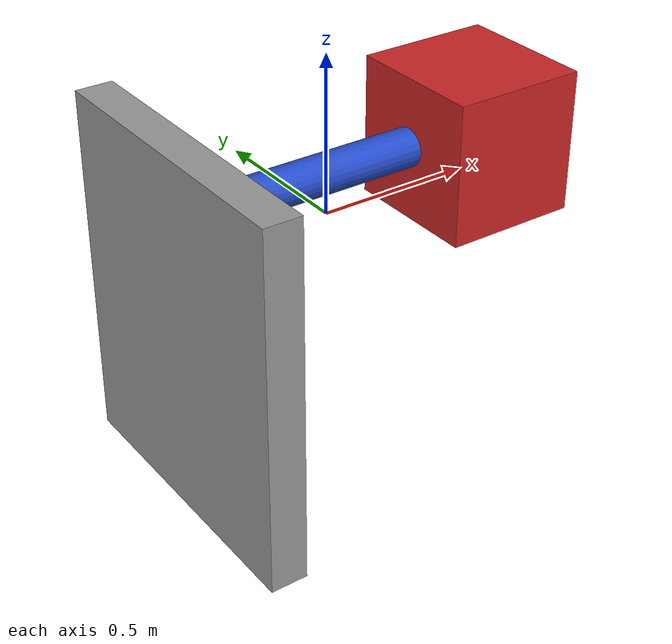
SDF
<?xml version='1.0'?>
<sdf version='1.7'>
  <model name='spring_mass_simple'>
    <link name='link_0'>
      <inertial>
        <mass>143649</mass>
        <inertia>
          <ixx>28886.2</ixx>
          <ixy>0</ixy>
          <ixz>0</ixz>
          <iyy>17090.2</iyy>
          <iyz>0</iyz>
          <izz>12145.6</izz>
        </inertia>
        <pose>0 0 0 0 -0 0</pose>
      </inertial>
      <pose>-0.446088 0.046589 -0.275992 0 -0 0</pose>
      <gravity>1</gravity>
      <self_collide>0</self_collide>
      <kinematic>0</kinematic>
      <enable_wind>0</enable_wind>
      <visual name='visual'>
        <pose>0 0 0 0 -0 0</pose>
        <geometry>
          <box>
            <size>0.120841 1 1.18872</size>
          </box>
        </geometry>
        <material>
          <lighting>1</lighting>
          <script>
            <uri>file://media/materials/scripts/gazebo.material</uri>
            <name>Gazebo/Grey</name>
          </script>
          <shader type='pixel'>
            <normal_map>__default__</normal_map>
          </shader>
          <ambient>0.3 0.3 0.3 1</ambient>
          <diffuse>0.7 0.7 0.7 1</diffuse>
          <specular>0.01 0.01 0.01 1</specular>
          <emissive>0 0 0 1</emissive>
        </material>
        <transparency>0</transparency>
        <cast_shadows>1</cast_shadows>
      </visual>
      <collision name='collision'>
        <laser_retro>0</laser_retro>
        <max_contacts>10</max_contacts>
        <pose>0 0 0 0 -0 0</pose>
        <geometry>
          <box>
            <size>0.120841 1 1.18872</size>
          </box>
        </geometry>
        <surface>
          <friction>
            <ode>
              <mu>1</mu>
              <mu2>1</mu2>
              <fdir1>0 0 0</fdir1>
              <slip1>0</slip1>
              <slip2>0</slip2>
            </ode>
            <torsional>
              <coefficient>1</coefficient>
              <patch_radius>0</patch_radius>
              <surface_radius>0</surface_radius>
              <use_patch_radius>1</use_patch_radius>
              <ode>
                <slip>0</slip>
              </ode>
            </torsional>
          </friction>
          <bounce>
            <restitution_coefficient>0</restitution_coefficient>
            <threshold>1e+06</threshold>
          </bounce>
          <contact>
            <collide_without_contact>0</collide_without_contact>
            <collide_without_contact_bitmask>1</collide_without_contact_bitmask>
            <collide_bitmask>1</collide_bitmask>
            <ode>
              <soft_cfm>0</soft_cfm>
              <soft_erp>0.2</soft_erp>
              <kp>1e+13</kp>
              <kd>1</kd>
              <max_vel>0.01</max_vel>
              <min_depth>0</min_depth>
            </ode>
            <bullet>
              <split_impulse>1</split_impulse>
              <split_impulse_penetration_threshold>-0.01</split_impulse_penetration_threshold>
              <soft_cfm>0</soft_cfm>
              <soft_erp>0.2</soft_erp>
              <kp>1e+13</kp>
              <kd>1</kd>
            </bullet>
          </contact>
        </surface>
      </collision>
    </link>
    <link name='link_1'>
      <inertial>
        <mass>0.0103185</mass>
        <inertia>
          <ixx>0.00041549</ixx>
          <ixy>0</ixy>
          <ixz>0</ixz>
          <iyy>0.00041549</iyy>
          <iyz>0</iyz>
          <izz>1.935e-05</izz>
        </inertia>
        <pose>0 0 0 0 -0 0</pose>
      </inertial>
      <pose>-0.0522 -0.016443 0.141985 -3.14159 1.5704 -3.14159</pose>
      <gravity>1</gravity>
      <self_collide>0</self_collide>
      <kinematic>0</kinematic>
      <enable_wind>0</enable_wind>
      <visual name='visual'>
        <pose>0 0 0 0 -0 0</pose>
        <geometry>
          <cylinder>
            <radius>0.0612437</radius>
            <length>0.686988</length>
          </cylinder>
        </geometry>
        <material>
          <lighting>1</lighting>
          <script>
            <uri>file://media/materials/scripts/gazebo.material</uri>
            <name>Gazebo/Blue</name>
          </script>
          <shader type='pixel'>
            <normal_map>__default__</normal_map>
          </shader>
          <ambient>0.3 0.3 0.3 1</ambient>
          <diffuse>0.7 0.7 0.7 1</diffuse>
          <specular>0.01 0.01 0.01 1</specular>
          <emissive>0 0 0 1</emissive>
        </material>
        <transparency>0</transparency>
        <cast_shadows>1</cast_shadows>
      </visual>
      <collision name='collision'>
        <laser_retro>0</laser_retro>
        <max_contacts>10</max_contacts>
        <pose>0 0 0 0 -0 0</pose>
        <geometry>
          <cylinder>
            <radius>0.061244</radius>
            <length>0.686988</length>
          </cylinder>
        </geometry>
        <surface>
          <friction>
            <ode>
              <mu>1</mu>
              <mu2>1</mu2>
              <fdir1>0 0 0</fdir1>
              <slip1>0</slip1>
              <slip2>0</slip2>
            </ode>
            <torsional>
              <coefficient>1</coefficient>
              <patch_radius>0</patch_radius>
              <surface_radius>0</surface_radius>
              <use_patch_radius>1</use_patch_radius>
              <ode>
                <slip>0</slip>
              </ode>
            </torsional>
          </friction>
          <bounce>
            <restitution_coefficient>0</restitution_coefficient>
            <threshold>1e+06</threshold>
          </bounce>
          <contact>
            <collide_without_contact>0</collide_without_contact>
            <collide_without_contact_bitmask>1</collide_without_contact_bitmask>
            <collide_bitmask>1</collide_bitmask>
            <ode>
              <soft_cfm>0</soft_cfm>
              <soft_erp>0.2</soft_erp>
              <kp>1e+13</kp>
              <kd>1</kd>
              <max_vel>0.01</max_vel>
              <min_depth>0</min_depth>
            </ode>
            <bullet>
              <split_impulse>1</split_impulse>
              <split_impulse_penetration_threshold>-0.01</split_impulse_penetration_threshold>
              <soft_cfm>0</soft_cfm>
              <soft_erp>0.2</soft_erp>
              <kp>1e+13</kp>
              <kd>1</kd>
            </bullet>
          </contact>
        </surface>
      </collision>
    </link>
    <link name='link_2'>
      <inertial>
        <mass>0.0869798</mass>
        <inertia>
          <ixx>0.0029318</ixx>
          <ixy>0</ixy>
          <ixz>0</ixz>
          <iyy>0.00280613</iyy>
          <iyz>0</iyz>
          <izz>0.00280612</izz>
        </inertia>
        <pose>0 0 0 0 -0 0</pose>
      </inertial>
      <pose>0.498287 -0.030146 0.134008 0 -0 0</pose>
      <gravity>1</gravity>
      <self_collide>0</self_collide>
      <kinematic>0</kinematic>
      <enable_wind>0</enable_wind>
      <visual name='visual'>
        <pose>0 0 0 0 -0 0</pose>
        <geometry>
          <box>
            <size>0.430001 0.44971 0.449712</size>
          </box>
        </geometry>
        <material>
          <lighting>1</lighting>
          <script>
            <uri>file://media/materials/scripts/gazebo.material</uri>
            <name>Gazebo/Red</name>
          </script>
          <shader type='pixel'>
            <normal_map>__default__</normal_map>
          </shader>
          <emissive>0 0 0 1</emissive>
          <ambient>1 0 0 1</ambient>
          <diffuse>1 0 0 1</diffuse>
          <specular>0.1 0.1 0.1 1</specular>
        </material>
        <transparency>0</transparency>
        <cast_shadows>1</cast_shadows>
      </visual>
      <collision name='collision'>
        <laser_retro>0</laser_retro>
        <max_contacts>10</max_contacts>
        <pose>0 0 0 0 -0 0</pose>
        <geometry>
          <box>
            <size>0.430001 0.44971 0.449712</size>
          </box>
        </geometry>
        <surface>
          <friction>
            <ode>
              <mu>1</mu>
              <mu2>1</mu2>
              <fdir1>0 0 0</fdir1>
              <slip1>0</slip1>
              <slip2>0</slip2>
            </ode>
            <torsional>
              <coefficient>1</coefficient>
              <patch_radius>0</patch_radius>
              <surface_radius>0</surface_radius>
              <use_patch_radius>1</use_patch_radius>
              <ode>
                <slip>0</slip>
              </ode>
            </torsional>
          </friction>
          <bounce>
            <restitution_coefficient>0</restitution_coefficient>
            <threshold>1e+06</threshold>
          </bounce>
          <contact>
            <collide_without_contact>0</collide_without_contact>
            <collide_without_contact_bitmask>1</collide_without_contact_bitmask>
            <collide_bitmask>1</collide_bitmask>
            <ode>
              <soft_cfm>0</soft_cfm>
              <soft_erp>0.2</soft_erp>
              <kp>1e+13</kp>
              <kd>1</kd>
              <max_vel>0.01</max_vel>
              <min_depth>0</min_depth>
            </ode>
            <bullet>
              <split_impulse>1</split_impulse>
              <split_impulse_penetration_threshold>-0.01</split_impulse_penetration_threshold>
              <soft_cfm>0</soft_cfm>
              <soft_erp>0.2</soft_erp>
              <kp>1e+13</kp>
              <kd>1</kd>
            </bullet>
          </contact>
        </surface>
      </collision>
    </link>
    <joint name='link_0_JOINT_1' type='prismatic'>
      <parent>link_0</parent>
      <child>link_1</child>
      <pose>0 0 0 0 0 -0.03</pose>
      <axis>
        <xyz>1 0 0</xyz>
        <limit>
          <lower>-1.79769e+308</lower>
          <upper>1.79769e+308</upper>
          <effort>-1</effort>
          <velocity>-1</velocity>
        </limit>
        <dynamics>
          <spring_reference>0</spring_reference>
          <spring_stiffness>0</spring_stiffness>
          <damping>0</damping>
        </dynamics>
      </axis>
      <physics>
        <ode>
          <limit>
            <cfm>0</cfm>
            <erp>0.2</erp>
          </limit>
          <suspension>
            <cfm>0</cfm>
            <erp>0.2</erp>
          </suspension>
        </ode>
      </physics>
    </joint>
    <joint name='link_1_JOINT_0' type='fixed'>
      <parent>link_1</parent>
      <child>link_2</child>
      <pose>0 0 0 0 -0 0</pose>
      <physics>
        <ode>
          <limit>
            <cfm>0</cfm>
            <erp>0.2</erp>
          </limit>
          <suspension>
            <cfm>0</cfm>
            <erp>0.2</erp>
          </suspension>
        </ode>
      </physics>
    </joint>
    <static>0</static>
    <allow_auto_disable>1</allow_auto_disable>
  </model>
</sdf>
